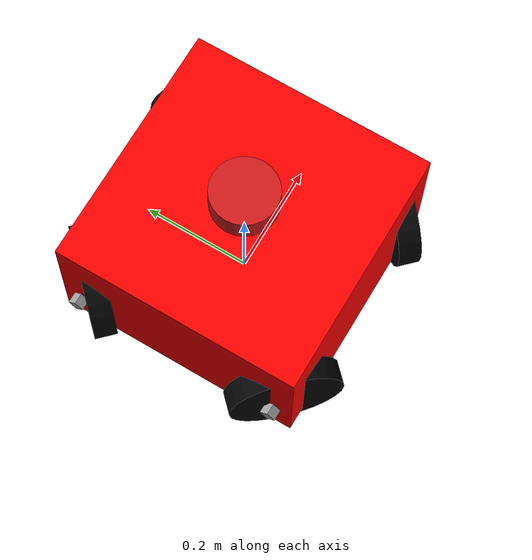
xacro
<?xml version="1.0"?>
<robot name="simple_robot" xmlns:xacro="http://ros.org/wiki/xacro">

  <xacro:arg name="robot_name" default="odin1"/>
  <xacro:arg name="frame_prefix" default=""/>
  <xacro:arg name="cmd_topic" default="/cmd_vel"/>
  <xacro:arg name="odom_topic" default="/odom"/>
  <xacro:arg name="odom_frame" default="odom"/>
  <xacro:arg name="cloud_topic" default="/odin1/cloud_slam"/>
  <xacro:arg name="base_r" default="1.0"/>
  <xacro:arg name="base_g" default="0.0"/>
  <xacro:arg name="base_b" default="0.0"/>
  <xacro:arg name="base_a" default="1.0"/>
  <xacro:arg name="gazebo_material" default="Gazebo/Red"/>

  <xacro:property name="base_size" value="0.45"/>
  <xacro:property name="base_height" value="0.25"/>
  <xacro:property name="base_z" value="0.15"/>

  <xacro:property name="wheel_radius" value="0.10"/>
  <xacro:property name="wheel_width" value="0.04"/>
  <xacro:property name="wheel_xy_offset" value="0.19"/>
  <xacro:property name="wheel_z_offset" value="0.10"/>
  <xacro:property name="wheel_mount_yaw" value="0.785398"/>
  <xacro:property name="wheel_forward_friction" value="1.5"/>
  <xacro:property name="wheel_side_friction" value="0.05"/>

  <xacro:macro name="simple_omni_robot" params="robot_name frame_prefix cmd_topic odom_topic odom_frame cloud_topic base_r base_g base_b base_a gazebo_material">
    <xacro:property name="base_link" value="${robot_name}_base_link"/>
    <xacro:property name="lidar_link" value="${frame_prefix}lidar_link"/>

    <!-- base link -->
    <link name="${base_link}">
      <visual>
        <origin xyz="0 0 ${base_z}" rpy="0 0 0"/>
        <geometry>
          <box size="${base_size} ${base_size} ${base_height}"/>
        </geometry>
        <material name="${robot_name}_base_color">
          <color rgba="${base_r} ${base_g} ${base_b} ${base_a}"/>
        </material>
      </visual>

      <collision>
        <origin xyz="0 0 ${base_z}" rpy="0 0 0"/>
        <geometry>
          <box size="${base_size} ${base_size} ${base_height}"/>
        </geometry>
      </collision>

      <inertial>
        <origin xyz="0 0 ${base_z}" rpy="0 0 0"/>
        <mass value="8.0"/>
        <inertia
          ixx="0.15" ixy="0.0" ixz="0.0"
          iyy="0.15" iyz="0.0"
          izz="0.15"/>
      </inertial>
    </link>

    <!-- four omni wheels -->
    <xacro:macro name="omni_wheel" params="prefix x y wheel_yaw roller_yaw">
      <link name="${frame_prefix}${prefix}_wheel_link">
        <visual>
          <origin xyz="0 0 0" rpy="1.5708 0 0"/>
          <geometry>
            <cylinder radius="${wheel_radius}" length="${wheel_width}"/>
          </geometry>
          <material name="black">
            <color rgba="0.02 0.02 0.02 1.0"/>
          </material>
        </visual>

        <collision>
          <origin xyz="0 0 0" rpy="1.5708 0 0"/>
          <geometry>
            <cylinder radius="${wheel_radius}" length="${wheel_width}"/>
          </geometry>
        </collision>

        <inertial>
          <mass value="0.5"/>
          <inertia
            ixx="0.001" ixy="0.0" ixz="0.0"
            iyy="0.001" iyz="0.0"
            izz="0.001"/>
        </inertial>
      </link>

      <joint name="${frame_prefix}${prefix}_wheel_joint" type="continuous">
        <parent link="${base_link}"/>
        <child link="${frame_prefix}${prefix}_wheel_link"/>
        <origin xyz="${x} ${y} ${wheel_z_offset}" rpy="0 0 ${wheel_yaw}"/>
        <axis xyz="0 1 0"/>
      </joint>

      <link name="${frame_prefix}${prefix}_roller_link">
        <visual>
          <origin xyz="0 0 0" rpy="0.7854 0 ${roller_yaw}"/>
          <geometry>
            <box size="0.11 0.02 0.02"/>
          </geometry>
          <material name="silver">
            <color rgba="0.65 0.65 0.65 1.0"/>
          </material>
        </visual>

        <collision>
          <origin xyz="0 0 0" rpy="0.7854 0 ${roller_yaw}"/>
          <geometry>
            <box size="0.11 0.02 0.02"/>
          </geometry>
        </collision>

        <inertial>
          <mass value="0.05"/>
          <inertia
            ixx="0.00005" ixy="0.0" ixz="0.0"
            iyy="0.00005" iyz="0.0"
            izz="0.00005"/>
        </inertial>
      </link>

      <joint name="${frame_prefix}${prefix}_roller_fixed_joint" type="fixed">
        <parent link="${frame_prefix}${prefix}_wheel_link"/>
        <child link="${frame_prefix}${prefix}_roller_link"/>
        <origin xyz="0 0 0" rpy="0 0 0"/>
      </joint>

      <gazebo reference="${frame_prefix}${prefix}_wheel_link">
        <material>Gazebo/Black</material>
        <fdir1>1 0 0</fdir1>
        <mu1>${wheel_forward_friction}</mu1>
        <mu2>${wheel_side_friction}</mu2>
      </gazebo>

      <gazebo reference="${frame_prefix}${prefix}_roller_link">
        <material>Gazebo/Grey</material>
        <mu1>0.05</mu1>
        <mu2>0.05</mu2>
      </gazebo>
    </xacro:macro>

    <xacro:omni_wheel
      prefix="front_left"
      x="${wheel_xy_offset}"
      y="${wheel_xy_offset}"
      wheel_yaw="${-wheel_mount_yaw}"
      roller_yaw="0.7854"/>
    <xacro:omni_wheel
      prefix="front_right"
      x="${wheel_xy_offset}"
      y="${-wheel_xy_offset}"
      wheel_yaw="${wheel_mount_yaw}"
      roller_yaw="-0.7854"/>
    <xacro:omni_wheel
      prefix="rear_left"
      x="${-wheel_xy_offset}"
      y="${wheel_xy_offset}"
      wheel_yaw="${wheel_mount_yaw}"
      roller_yaw="-0.7854"/>
    <xacro:omni_wheel
      prefix="rear_right"
      x="${-wheel_xy_offset}"
      y="${-wheel_xy_offset}"
      wheel_yaw="${-wheel_mount_yaw}"
      roller_yaw="0.7854"/>

    <!-- lidar link -->
    <link name="${lidar_link}">
      <visual>
        <origin xyz="0 0 0" rpy="0 0 0"/>
        <geometry>
          <cylinder radius="0.06" length="0.05"/>
        </geometry>
        <material name="red">
          <color rgba="0.8 0.1 0.1 1.0"/>
        </material>
      </visual>

      <collision>
        <origin xyz="0 0 0" rpy="0 0 0"/>
        <geometry>
          <cylinder radius="0.06" length="0.05"/>
        </geometry>
      </collision>

      <inertial>
        <mass value="0.2"/>
        <inertia
          ixx="0.0005" ixy="0.0" ixz="0.0"
          iyy="0.0005" iyz="0.0"
          izz="0.0005"/>
      </inertial>
    </link>

    <joint name="${frame_prefix}base_to_lidar" type="fixed">
      <parent link="${base_link}"/>
      <child link="${lidar_link}"/>
      <origin xyz="0 0 0.32" rpy="0 0 0"/>
    </joint>

    <!-- Gazebo lidar sensor -->
    <!-- PointCloud2 -->
    <gazebo reference="${lidar_link}">
      <sensor name="${frame_prefix}pointcloud_lidar" type="gpu_ray">
        <always_on>true</always_on>
        <update_rate>10</update_rate>
        <visualize>false</visualize>

        <pose>0 0 0 0 0 0</pose>

        <ray>
          <scan>
            <horizontal>
              <samples>360</samples>
              <resolution>1</resolution>
              <min_angle>-3.14159</min_angle>
              <max_angle>3.14159</max_angle>
            </horizontal>

            <vertical>
              <samples>16</samples>
              <resolution>1</resolution>
              <min_angle>-0.261799</min_angle>
              <max_angle>0.261799</max_angle>
            </vertical>
          </scan>

          <range>
            <min>0.1</min>
            <max>20.0</max>
            <resolution>0.02</resolution>
          </range>

          <noise>
            <type>gaussian</type>
            <mean>0.0</mean>
            <stddev>0.01</stddev>
          </noise>
        </ray>

        <plugin name="${frame_prefix}gazebo_ros_pointcloud" filename="libgazebo_ros_ray_sensor.so">
          <ros>
            <namespace>/</namespace>
            <remapping>~/out:=${cloud_topic}</remapping>
          </ros>
          <output_type>sensor_msgs/PointCloud2</output_type>
          <frame_name>${lidar_link}</frame_name>
        </plugin>
      </sensor>
    </gazebo>

    <!-- Gazebo omni drive plugin -->
    <gazebo>
      <plugin name="${frame_prefix}omni_drive_controller" filename="libgazebo_ros_planar_move.so">
        <ros>
          <namespace>/</namespace>
          <remapping>cmd_vel:=${cmd_topic}</remapping>
          <remapping>odom:=${odom_topic}</remapping>
        </ros>

        <command_topic>${cmd_topic}</command_topic>
        <odometry_topic>${odom_topic}</odometry_topic>
        <odometry_frame>${odom_frame}</odometry_frame>
        <robot_base_frame>${base_link}</robot_base_frame>

        <publish_odom>true</publish_odom>
        <publish_odom_tf>true</publish_odom_tf>

        <update_rate>50</update_rate>
      </plugin>
    </gazebo>

    <gazebo reference="${base_link}">
      <material>${gazebo_material}</material>
    </gazebo>
  </xacro:macro>

  <xacro:simple_omni_robot
    robot_name="$(arg robot_name)"
    frame_prefix="$(arg frame_prefix)"
    cmd_topic="$(arg cmd_topic)"
    odom_topic="$(arg odom_topic)"
    odom_frame="$(arg odom_frame)"
    cloud_topic="$(arg cloud_topic)"
    base_r="$(arg base_r)"
    base_g="$(arg base_g)"
    base_b="$(arg base_b)"
    base_a="$(arg base_a)"
    gazebo_material="$(arg gazebo_material)"/>

</robot>
